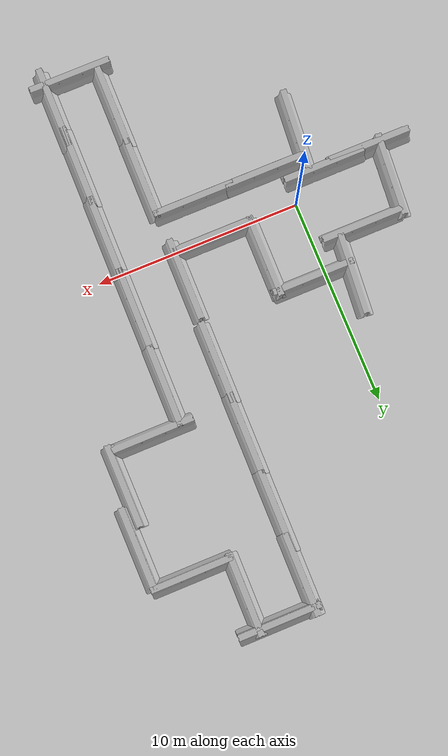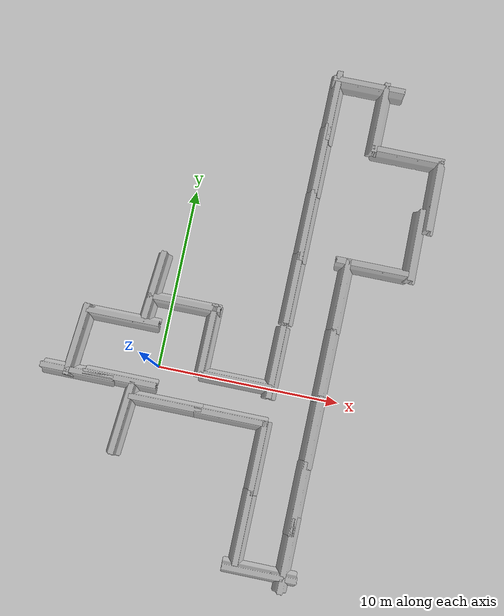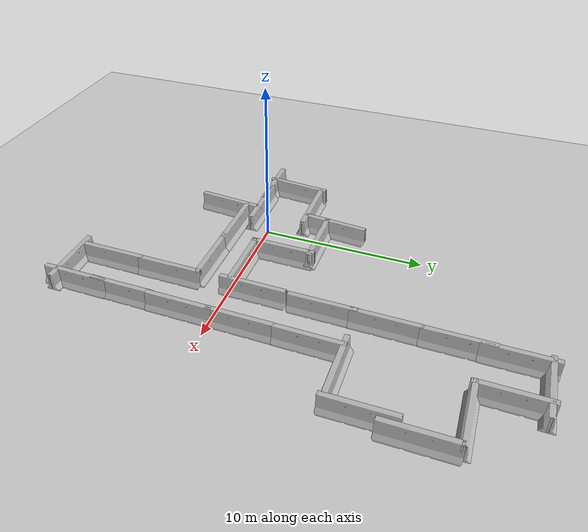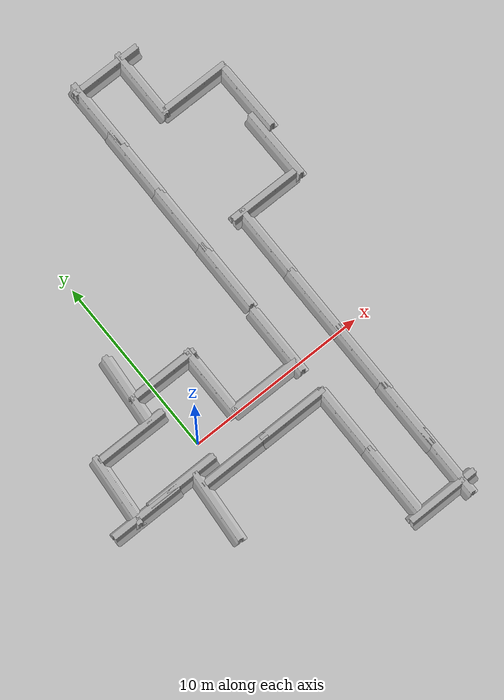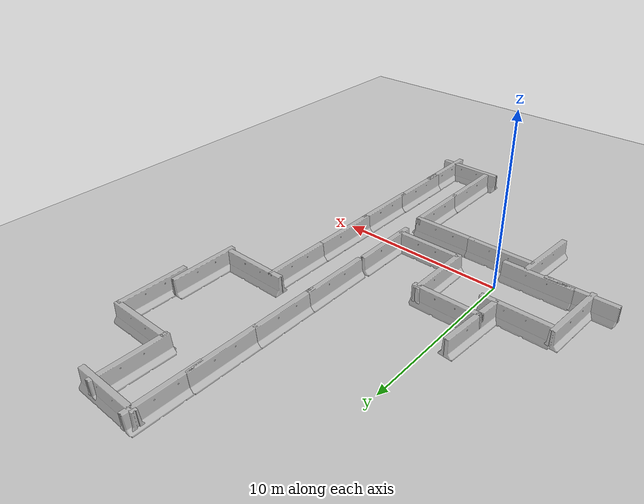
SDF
<sdf version="1.6">
 <world name="default">
  <light name="sun" type="directional">
   <pose>0 0 10 0 -0 0</pose>
   <diffuse>0.8 0.8 0.8 1</diffuse>
   <specular>0.1 0.1 0.1 1</specular>
   <attenuation>
    <range>1000</range>
    <constant>0.9</constant>
    <linear>0.01</linear>
    <quadratic>0.001</quadratic>
   </attenuation>
   <direction>-0.5 0.5 -1</direction>
  </light>
  <model name="ground_plane">
   <static>1</static>
   <link name="link">
    <collision name="collision">
     <geometry><plane><normal>0 0 1</normal><size>100 100</size></plane></geometry>
     <surface><friction><ode><mu>100</mu><mu2>50</mu2></ode></friction></surface>
    </collision>
    <visual name="visual">
     <cast_shadows>0</cast_shadows>
     <geometry><plane><normal>0 0 1</normal><size>100 100</size></plane></geometry>
     <material>
      <script><uri>file://media/materials/scripts/gazebo.material</uri><name>Gazebo/Grey</name></script>
     </material>
    </visual>
   </link>
  </model>
  <gravity>0 0 -9.8</gravity>
  <magnetic_field>6e-06 2.3e-05 -4.2e-05</magnetic_field>
  <atmosphere type="adiabatic"/>
  <physics name="default_physics" default="0" type="ode">
   <max_step_size>0.001</max_step_size>
   <real_time_factor>1</real_time_factor>
   <real_time_update_rate>1000</real_time_update_rate>
  </physics>
  <scene><ambient>0.4 0.4 0.4 1</ambient><background>0.7 0.7 0.7 1</background><shadows>1</shadows></scene>
  <spherical_coordinates>
   <surface_model>EARTH_WGS84</surface_model>
   <latitude_deg>0</latitude_deg>
   <longitude_deg>0</longitude_deg>
   <elevation>0</elevation>
   <heading_deg>0</heading_deg>
  </spherical_coordinates>
  <model name="jersey_barrier">
   <static>1</static>
   <link name="link">
    <visual name="visual">
     <geometry>
      <mesh><uri>model://jersey_barrier/meshes/jersey_barrier.dae</uri><scale>1 1 1</scale></mesh>
     </geometry>
    </visual>
    <collision name="upright">
     <pose>0 0 0.5715 0 -0 0</pose>
     <geometry><box><size>4.06542 0.3063 1.143</size></box></geometry>
    </collision>
    <collision name="base">
     <pose>0 0 0.032258 0 -0 0</pose>
     <geometry><box><size>4.06542 0.8107 0.064516</size></box></geometry>
    </collision>
    <collision name="base2">
     <pose>0 0 0.1 0 -0 0</pose>
     <geometry><box><size>4.06542 0.65 0.1</size></box></geometry>
    </collision>
    <collision name="base3">
     <pose>0 0 0.2 0 -0 0</pose>
     <geometry><box><size>4.06542 0.5 0.1</size></box></geometry>
    </collision>
    <collision name="left-angle">
     <pose>0 -0.224 0.2401 0.9 -0 0</pose>
     <geometry><box><size>4.06542 0.5 0.064516</size></box></geometry>
    </collision>
    <collision name="right-angle">
     <pose>0 0.224 0.2401 -0.9 0 0</pose>
     <geometry><box><size>4.06542 0.5 0.064516</size></box></geometry>
    </collision>
   </link>
   <pose>0.827355 -1.9113 0 0 -0 0</pose>
  </model>
  <model name="jersey_barrier_clone">
   <static>1</static>
   <link name="link">
    <visual name="visual">
     <geometry>
      <mesh><uri>model://jersey_barrier/meshes/jersey_barrier.dae</uri><scale>1 1 1</scale></mesh>
     </geometry>
    </visual>
    <collision name="upright">
     <pose>0 0 0.5715 0 -0 0</pose>
     <geometry><box><size>4.06542 0.3063 1.143</size></box></geometry>
    </collision>
    <collision name="base">
     <pose>0 0 0.032258 0 -0 0</pose>
     <geometry><box><size>4.06542 0.8107 0.064516</size></box></geometry>
    </collision>
    <collision name="base2">
     <pose>0 0 0.1 0 -0 0</pose>
     <geometry><box><size>4.06542 0.65 0.1</size></box></geometry>
    </collision>
    <collision name="base3">
     <pose>0 0 0.2 0 -0 0</pose>
     <geometry><box><size>4.06542 0.5 0.1</size></box></geometry>
    </collision>
    <collision name="left-angle">
     <pose>0 -0.224 0.2401 0.9 -0 0</pose>
     <geometry><box><size>4.06542 0.5 0.064516</size></box></geometry>
    </collision>
    <collision name="right-angle">
     <pose>0 0.224 0.2401 -0.9 0 0</pose>
     <geometry><box><size>4.06542 0.5 0.064516</size></box></geometry>
    </collision>
   </link>
   <pose>4.43194 -1.91594 0 0 -0 0</pose>
  </model>
  <model name="jersey_barrier_clone_0">
   <static>1</static>
   <link name="link">
    <visual name="visual">
     <geometry>
      <mesh><uri>model://jersey_barrier/meshes/jersey_barrier.dae</uri><scale>1 1 1</scale></mesh>
     </geometry>
    </visual>
    <collision name="upright">
     <pose>0 0 0.5715 0 -0 0</pose>
     <geometry><box><size>4.06542 0.3063 1.143</size></box></geometry>
    </collision>
    <collision name="base">
     <pose>0 0 0.032258 0 -0 0</pose>
     <geometry><box><size>4.06542 0.8107 0.064516</size></box></geometry>
    </collision>
    <collision name="base2">
     <pose>0 0 0.1 0 -0 0</pose>
     <geometry><box><size>4.06542 0.65 0.1</size></box></geometry>
    </collision>
    <collision name="base3">
     <pose>0 0 0.2 0 -0 0</pose>
     <geometry><box><size>4.06542 0.5 0.1</size></box></geometry>
    </collision>
    <collision name="left-angle">
     <pose>0 -0.224 0.2401 0.9 -0 0</pose>
     <geometry><box><size>4.06542 0.5 0.064516</size></box></geometry>
    </collision>
    <collision name="right-angle">
     <pose>0 0.224 0.2401 -0.9 0 0</pose>
     <geometry><box><size>4.06542 0.5 0.064516</size></box></geometry>
    </collision>
   </link>
   <pose>4.28294 0.067913 0 0 -0 0</pose>
  </model>
  <model name="jersey_barrier_clone_0_clone">
   <static>1</static>
   <link name="link">
    <visual name="visual">
     <geometry>
      <mesh><uri>model://jersey_barrier/meshes/jersey_barrier.dae</uri><scale>1 1 1</scale></mesh>
     </geometry>
    </visual>
    <collision name="upright">
     <pose>0 0 0.5715 0 -0 0</pose>
     <geometry><box><size>4.06542 0.3063 1.143</size></box></geometry>
    </collision>
    <collision name="base">
     <pose>0 0 0.032258 0 -0 0</pose>
     <geometry><box><size>4.06542 0.8107 0.064516</size></box></geometry>
    </collision>
    <collision name="base2">
     <pose>0 0 0.1 0 -0 0</pose>
     <geometry><box><size>4.06542 0.65 0.1</size></box></geometry>
    </collision>
    <collision name="base3">
     <pose>0 0 0.2 0 -0 0</pose>
     <geometry><box><size>4.06542 0.5 0.1</size></box></geometry>
    </collision>
    <collision name="left-angle">
     <pose>0 -0.224 0.2401 0.9 -0 0</pose>
     <geometry><box><size>4.06542 0.5 0.064516</size></box></geometry>
    </collision>
    <collision name="right-angle">
     <pose>0 0.224 0.2401 -0.9 0 0</pose>
     <geometry><box><size>4.06542 0.5 0.064516</size></box></geometry>
    </collision>
   </link>
   <pose>6.23702 1.47395 0 0 -0 1.56156</pose>
  </model>
  <model name="jersey_barrier_clone_0_clone_clone">
   <static>1</static>
   <link name="link">
    <visual name="visual">
     <geometry>
      <mesh><uri>model://jersey_barrier/meshes/jersey_barrier.dae</uri><scale>1 1 1</scale></mesh>
     </geometry>
    </visual>
    <collision name="upright">
     <pose>0 0 0.5715 0 -0 0</pose>
     <geometry><box><size>4.06542 0.3063 1.143</size></box></geometry>
    </collision>
    <collision name="base">
     <pose>0 0 0.032258 0 -0 0</pose>
     <geometry><box><size>4.06542 0.8107 0.064516</size></box></geometry>
    </collision>
    <collision name="base2">
     <pose>0 0 0.1 0 -0 0</pose>
     <geometry><box><size>4.06542 0.65 0.1</size></box></geometry>
    </collision>
    <collision name="base3">
     <pose>0 0 0.2 0 -0 0</pose>
     <geometry><box><size>4.06542 0.5 0.1</size></box></geometry>
    </collision>
    <collision name="left-angle">
     <pose>0 -0.224 0.2401 0.9 -0 0</pose>
     <geometry><box><size>4.06542 0.5 0.064516</size></box></geometry>
    </collision>
    <collision name="right-angle">
     <pose>0 0.224 0.2401 -0.9 0 0</pose>
     <geometry><box><size>4.06542 0.5 0.064516</size></box></geometry>
    </collision>
   </link>
   <pose>6.29799 -3.77355 0 0 -0 1.56156</pose>
  </model>
  <model name="jersey_barrier_clone_0_clone_clone_0">
   <static>1</static>
   <link name="link">
    <visual name="visual">
     <geometry>
      <mesh><uri>model://jersey_barrier/meshes/jersey_barrier.dae</uri><scale>1 1 1</scale></mesh>
     </geometry>
    </visual>
    <collision name="upright">
     <pose>0 0 0.5715 0 -0 0</pose>
     <geometry><box><size>4.06542 0.3063 1.143</size></box></geometry>
    </collision>
    <collision name="base">
     <pose>0 0 0.032258 0 -0 0</pose>
     <geometry><box><size>4.06542 0.8107 0.064516</size></box></geometry>
    </collision>
    <collision name="base2">
     <pose>0 0 0.1 0 -0 0</pose>
     <geometry><box><size>4.06542 0.65 0.1</size></box></geometry>
    </collision>
    <collision name="base3">
     <pose>0 0 0.2 0 -0 0</pose>
     <geometry><box><size>4.06542 0.5 0.1</size></box></geometry>
    </collision>
    <collision name="left-angle">
     <pose>0 -0.224 0.2401 0.9 -0 0</pose>
     <geometry><box><size>4.06542 0.5 0.064516</size></box></geometry>
    </collision>
    <collision name="right-angle">
     <pose>0 0.224 0.2401 -0.9 0 0</pose>
     <geometry><box><size>4.06542 0.5 0.064516</size></box></geometry>
    </collision>
   </link>
   <pose>8.9444 1.848 0 0 -0 1.56156</pose>
  </model>
  <model name="jersey_barrier_clone_0_clone_clone_1">
   <static>1</static>
   <link name="link">
    <visual name="visual">
     <geometry>
      <mesh><uri>model://jersey_barrier/meshes/jersey_barrier.dae</uri><scale>1 1 1</scale></mesh>
     </geometry>
    </visual>
    <collision name="upright">
     <pose>0 0 0.5715 0 -0 0</pose>
     <geometry><box><size>4.06542 0.3063 1.143</size></box></geometry>
    </collision>
    <collision name="base">
     <pose>0 0 0.032258 0 -0 0</pose>
     <geometry><box><size>4.06542 0.8107 0.064516</size></box></geometry>
    </collision>
    <collision name="base2">
     <pose>0 0 0.1 0 -0 0</pose>
     <geometry><box><size>4.06542 0.65 0.1</size></box></geometry>
    </collision>
    <collision name="base3">
     <pose>0 0 0.2 0 -0 0</pose>
     <geometry><box><size>4.06542 0.5 0.1</size></box></geometry>
    </collision>
    <collision name="left-angle">
     <pose>0 -0.224 0.2401 0.9 -0 0</pose>
     <geometry><box><size>4.06542 0.5 0.064516</size></box></geometry>
    </collision>
    <collision name="right-angle">
     <pose>0 0.224 0.2401 -0.9 0 0</pose>
     <geometry><box><size>4.06542 0.5 0.064516</size></box></geometry>
    </collision>
   </link>
   <pose>8.92211 -1.8276 0 0 -0 1.56156</pose>
  </model>
  <model name="jersey_barrier_clone_0_clone_clone_2">
   <static>1</static>
   <link name="link">
    <visual name="visual">
     <geometry>
      <mesh><uri>model://jersey_barrier/meshes/jersey_barrier.dae</uri><scale>1 1 1</scale></mesh>
     </geometry>
    </visual>
    <collision name="upright">
     <pose>0 0 0.5715 0 -0 0</pose>
     <geometry><box><size>4.06542 0.3063 1.143</size></box></geometry>
    </collision>
    <collision name="base">
     <pose>0 0 0.032258 0 -0 0</pose>
     <geometry><box><size>4.06542 0.8107 0.064516</size></box></geometry>
    </collision>
    <collision name="base2">
     <pose>0 0 0.1 0 -0 0</pose>
     <geometry><box><size>4.06542 0.65 0.1</size></box></geometry>
    </collision>
    <collision name="base3">
     <pose>0 0 0.2 0 -0 0</pose>
     <geometry><box><size>4.06542 0.5 0.1</size></box></geometry>
    </collision>
    <collision name="left-angle">
     <pose>0 -0.224 0.2401 0.9 -0 0</pose>
     <geometry><box><size>4.06542 0.5 0.064516</size></box></geometry>
    </collision>
    <collision name="right-angle">
     <pose>0 0.224 0.2401 -0.9 0 0</pose>
     <geometry><box><size>4.06542 0.5 0.064516</size></box></geometry>
    </collision>
   </link>
   <pose>8.85462 -5.43466 0 0 -0 1.56156</pose>
  </model>
  <model name="jersey_barrier_clone_0_clone_clone_3">
   <static>1</static>
   <link name="link">
    <visual name="visual">
     <geometry>
      <mesh><uri>model://jersey_barrier/meshes/jersey_barrier.dae</uri><scale>1 1 1</scale></mesh>
     </geometry>
    </visual>
    <collision name="upright">
     <pose>0 0 0.5715 0 -0 0</pose>
     <geometry><box><size>4.06542 0.3063 1.143</size></box></geometry>
    </collision>
    <collision name="base">
     <pose>0 0 0.032258 0 -0 0</pose>
     <geometry><box><size>4.06542 0.8107 0.064516</size></box></geometry>
    </collision>
    <collision name="base2">
     <pose>0 0 0.1 0 -0 0</pose>
     <geometry><box><size>4.06542 0.65 0.1</size></box></geometry>
    </collision>
    <collision name="base3">
     <pose>0 0 0.2 0 -0 0</pose>
     <geometry><box><size>4.06542 0.5 0.1</size></box></geometry>
    </collision>
    <collision name="left-angle">
     <pose>0 -0.224 0.2401 0.9 -0 0</pose>
     <geometry><box><size>4.06542 0.5 0.064516</size></box></geometry>
    </collision>
    <collision name="right-angle">
     <pose>0 0.224 0.2401 -0.9 0 0</pose>
     <geometry><box><size>4.06542 0.5 0.064516</size></box></geometry>
    </collision>
   </link>
   <pose>8.84626 -8.47196 0 0 -0 1.56156</pose>
  </model>
  <model name="jersey_barrier_clone_0_clone_clone_4">
   <static>1</static>
   <link name="link">
    <visual name="visual">
     <geometry>
      <mesh><uri>model://jersey_barrier/meshes/jersey_barrier.dae</uri><scale>1 1 1</scale></mesh>
     </geometry>
    </visual>
    <collision name="upright">
     <pose>0 0 0.5715 0 -0 0</pose>
     <geometry><box><size>4.06542 0.3063 1.143</size></box></geometry>
    </collision>
    <collision name="base">
     <pose>0 0 0.032258 0 -0 0</pose>
     <geometry><box><size>4.06542 0.8107 0.064516</size></box></geometry>
    </collision>
    <collision name="base2">
     <pose>0 0 0.1 0 -0 0</pose>
     <geometry><box><size>4.06542 0.65 0.1</size></box></geometry>
    </collision>
    <collision name="base3">
     <pose>0 0 0.2 0 -0 0</pose>
     <geometry><box><size>4.06542 0.5 0.1</size></box></geometry>
    </collision>
    <collision name="left-angle">
     <pose>0 -0.224 0.2401 0.9 -0 0</pose>
     <geometry><box><size>4.06542 0.5 0.064516</size></box></geometry>
    </collision>
    <collision name="right-angle">
     <pose>0 0.224 0.2401 -0.9 0 0</pose>
     <geometry><box><size>4.06542 0.5 0.064516</size></box></geometry>
    </collision>
   </link>
   <pose>6.24912 -7.51198 0 0 -0 1.56156</pose>
  </model>
  <model name="jersey_barrier_clone_0_clone_clone_5">
   <static>1</static>
   <link name="link">
    <visual name="visual">
     <geometry>
      <mesh><uri>model://jersey_barrier/meshes/jersey_barrier.dae</uri><scale>1 1 1</scale></mesh>
     </geometry>
    </visual>
    <collision name="upright">
     <pose>0 0 0.5715 0 -0 0</pose>
     <geometry><box><size>4.06542 0.3063 1.143</size></box></geometry>
    </collision>
    <collision name="base">
     <pose>0 0 0.032258 0 -0 0</pose>
     <geometry><box><size>4.06542 0.8107 0.064516</size></box></geometry>
    </collision>
    <collision name="base2">
     <pose>0 0 0.1 0 -0 0</pose>
     <geometry><box><size>4.06542 0.65 0.1</size></box></geometry>
    </collision>
    <collision name="base3">
     <pose>0 0 0.2 0 -0 0</pose>
     <geometry><box><size>4.06542 0.5 0.1</size></box></geometry>
    </collision>
    <collision name="left-angle">
     <pose>0 -0.224 0.2401 0.9 -0 0</pose>
     <geometry><box><size>4.06542 0.5 0.064516</size></box></geometry>
    </collision>
    <collision name="right-angle">
     <pose>0 0.224 0.2401 -0.9 0 0</pose>
     <geometry><box><size>4.06542 0.5 0.064516</size></box></geometry>
    </collision>
   </link>
   <pose>8.99865 5.73929 0 0 -0 1.56156</pose>
  </model>
  <model name="jersey_barrier_clone_0_clone_clone_6">
   <static>1</static>
   <link name="link">
    <visual name="visual">
     <geometry>
      <mesh><uri>model://jersey_barrier/meshes/jersey_barrier.dae</uri><scale>1 1 1</scale></mesh>
     </geometry>
    </visual>
    <collision name="upright">
     <pose>0 0 0.5715 0 -0 0</pose>
     <geometry><box><size>4.06542 0.3063 1.143</size></box></geometry>
    </collision>
    <collision name="base">
     <pose>0 0 0.032258 0 -0 0</pose>
     <geometry><box><size>4.06542 0.8107 0.064516</size></box></geometry>
    </collision>
    <collision name="base2">
     <pose>0 0 0.1 0 -0 0</pose>
     <geometry><box><size>4.06542 0.65 0.1</size></box></geometry>
    </collision>
    <collision name="base3">
     <pose>0 0 0.2 0 -0 0</pose>
     <geometry><box><size>4.06542 0.5 0.1</size></box></geometry>
    </collision>
    <collision name="left-angle">
     <pose>0 -0.224 0.2401 0.9 -0 0</pose>
     <geometry><box><size>4.06542 0.5 0.064516</size></box></geometry>
    </collision>
    <collision name="right-angle">
     <pose>0 0.224 0.2401 -0.9 0 0</pose>
     <geometry><box><size>4.06542 0.5 0.064516</size></box></geometry>
    </collision>
   </link>
   <pose>6.35401 5.64853 0 0 -0 1.56156</pose>
  </model>
  <model name="jersey_barrier_clone_0_clone_clone_7">
   <static>1</static>
   <link name="link">
    <visual name="visual">
     <geometry>
      <mesh><uri>model://jersey_barrier/meshes/jersey_barrier.dae</uri><scale>1 1 1</scale></mesh>
     </geometry>
    </visual>
    <collision name="upright">
     <pose>0 0 0.5715 0 -0 0</pose>
     <geometry><box><size>4.06542 0.3063 1.143</size></box></geometry>
    </collision>
    <collision name="base">
     <pose>0 0 0.032258 0 -0 0</pose>
     <geometry><box><size>4.06542 0.8107 0.064516</size></box></geometry>
    </collision>
    <collision name="base2">
     <pose>0 0 0.1 0 -0 0</pose>
     <geometry><box><size>4.06542 0.65 0.1</size></box></geometry>
    </collision>
    <collision name="base3">
     <pose>0 0 0.2 0 -0 0</pose>
     <geometry><box><size>4.06542 0.5 0.1</size></box></geometry>
    </collision>
    <collision name="left-angle">
     <pose>0 -0.224 0.2401 0.9 -0 0</pose>
     <geometry><box><size>4.06542 0.5 0.064516</size></box></geometry>
    </collision>
    <collision name="right-angle">
     <pose>0 0.224 0.2401 -0.9 0 0</pose>
     <geometry><box><size>4.06542 0.5 0.064516</size></box></geometry>
    </collision>
   </link>
   <pose>6.40336 9.19233 0 0 -0 1.56156</pose>
  </model>
  <model name="jersey_barrier_clone_0_clone_clone_8">
   <static>1</static>
   <link name="link">
    <visual name="visual">
     <geometry>
      <mesh><uri>model://jersey_barrier/meshes/jersey_barrier.dae</uri><scale>1 1 1</scale></mesh>
     </geometry>
    </visual>
    <collision name="upright">
     <pose>0 0 0.5715 0 -0 0</pose>
     <geometry><box><size>4.06542 0.3063 1.143</size></box></geometry>
    </collision>
    <collision name="base">
     <pose>0 0 0.032258 0 -0 0</pose>
     <geometry><box><size>4.06542 0.8107 0.064516</size></box></geometry>
    </collision>
    <collision name="base2">
     <pose>0 0 0.1 0 -0 0</pose>
     <geometry><box><size>4.06542 0.65 0.1</size></box></geometry>
    </collision>
    <collision name="base3">
     <pose>0 0 0.2 0 -0 0</pose>
     <geometry><box><size>4.06542 0.5 0.1</size></box></geometry>
    </collision>
    <collision name="left-angle">
     <pose>0 -0.224 0.2401 0.9 -0 0</pose>
     <geometry><box><size>4.06542 0.5 0.064516</size></box></geometry>
    </collision>
    <collision name="right-angle">
     <pose>0 0.224 0.2401 -0.9 0 0</pose>
     <geometry><box><size>4.06542 0.5 0.064516</size></box></geometry>
    </collision>
   </link>
   <pose>6.45625 13.0191 0 0 -0 1.56156</pose>
  </model>
  <model name="jersey_barrier_clone_0_clone_clone_9">
   <static>1</static>
   <link name="link">
    <visual name="visual">
     <geometry>
      <mesh><uri>model://jersey_barrier/meshes/jersey_barrier.dae</uri><scale>1 1 1</scale></mesh>
     </geometry>
    </visual>
    <collision name="upright">
     <pose>0 0 0.5715 0 -0 0</pose>
     <geometry><box><size>4.06542 0.3063 1.143</size></box></geometry>
    </collision>
    <collision name="base">
     <pose>0 0 0.032258 0 -0 0</pose>
     <geometry><box><size>4.06542 0.8107 0.064516</size></box></geometry>
    </collision>
    <collision name="base2">
     <pose>0 0 0.1 0 -0 0</pose>
     <geometry><box><size>4.06542 0.65 0.1</size></box></geometry>
    </collision>
    <collision name="base3">
     <pose>0 0 0.2 0 -0 0</pose>
     <geometry><box><size>4.06542 0.5 0.1</size></box></geometry>
    </collision>
    <collision name="left-angle">
     <pose>0 -0.224 0.2401 0.9 -0 0</pose>
     <geometry><box><size>4.06542 0.5 0.064516</size></box></geometry>
    </collision>
    <collision name="right-angle">
     <pose>0 0.224 0.2401 -0.9 0 0</pose>
     <geometry><box><size>4.06542 0.5 0.064516</size></box></geometry>
    </collision>
   </link>
   <pose>6.52114 16.0923 0 0 -0 1.56156</pose>
  </model>
  <model name="jersey_barrier_clone_0_clone_clone_10">
   <static>1</static>
   <link name="link">
    <visual name="visual">
     <geometry>
      <mesh><uri>model://jersey_barrier/meshes/jersey_barrier.dae</uri><scale>1 1 1</scale></mesh>
     </geometry>
    </visual>
    <collision name="upright">
     <pose>0 0 0.5715 0 -0 0</pose>
     <geometry><box><size>4.06542 0.3063 1.143</size></box></geometry>
    </collision>
    <collision name="base">
     <pose>0 0 0.032258 0 -0 0</pose>
     <geometry><box><size>4.06542 0.8107 0.064516</size></box></geometry>
    </collision>
    <collision name="base2">
     <pose>0 0 0.1 0 -0 0</pose>
     <geometry><box><size>4.06542 0.65 0.1</size></box></geometry>
    </collision>
    <collision name="base3">
     <pose>0 0 0.2 0 -0 0</pose>
     <geometry><box><size>4.06542 0.5 0.1</size></box></geometry>
    </collision>
    <collision name="left-angle">
     <pose>0 -0.224 0.2401 0.9 -0 0</pose>
     <geometry><box><size>4.06542 0.5 0.064516</size></box></geometry>
    </collision>
    <collision name="right-angle">
     <pose>0 0.224 0.2401 -0.9 0 0</pose>
     <geometry><box><size>4.06542 0.5 0.064516</size></box></geometry>
    </collision>
   </link>
   <pose>9.23004 15.9573 0 0 -0 1.56156</pose>
  </model>
  <model name="jersey_barrier_clone_0_clone_clone_11">
   <static>1</static>
   <link name="link">
    <visual name="visual">
     <geometry>
      <mesh><uri>model://jersey_barrier/meshes/jersey_barrier.dae</uri><scale>1 1 1</scale></mesh>
     </geometry>
    </visual>
    <collision name="upright">
     <pose>0 0 0.5715 0 -0 0</pose>
     <geometry><box><size>4.06542 0.3063 1.143</size></box></geometry>
    </collision>
    <collision name="base">
     <pose>0 0 0.032258 0 -0 0</pose>
     <geometry><box><size>4.06542 0.8107 0.064516</size></box></geometry>
    </collision>
    <collision name="base2">
     <pose>0 0 0.1 0 -0 0</pose>
     <geometry><box><size>4.06542 0.65 0.1</size></box></geometry>
    </collision>
    <collision name="base3">
     <pose>0 0 0.2 0 -0 0</pose>
     <geometry><box><size>4.06542 0.5 0.1</size></box></geometry>
    </collision>
    <collision name="left-angle">
     <pose>0 -0.224 0.2401 0.9 -0 0</pose>
     <geometry><box><size>4.06542 0.5 0.064516</size></box></geometry>
    </collision>
    <collision name="right-angle">
     <pose>0 0.224 0.2401 -0.9 0 0</pose>
     <geometry><box><size>4.06542 0.5 0.064516</size></box></geometry>
    </collision>
   </link>
   <pose>2.37502 1.88795 0 0 -0 1.56156</pose>
  </model>
  <model name="jersey_barrier_0">
   <static>1</static>
   <link name="link">
    <visual name="visual">
     <geometry>
      <mesh><uri>model://jersey_barrier/meshes/jersey_barrier.dae</uri><scale>1 1 1</scale></mesh>
     </geometry>
    </visual>
    <collision name="upright">
     <pose>0 0 0.5715 0 -0 0</pose>
     <geometry><box><size>4.06542 0.3063 1.143</size></box></geometry>
    </collision>
    <collision name="base">
     <pose>0 0 0.032258 0 -0 0</pose>
     <geometry><box><size>4.06542 0.8107 0.064516</size></box></geometry>
    </collision>
    <collision name="base2">
     <pose>0 0 0.1 0 -0 0</pose>
     <geometry><box><size>4.06542 0.65 0.1</size></box></geometry>
    </collision>
    <collision name="base3">
     <pose>0 0 0.2 0 -0 0</pose>
     <geometry><box><size>4.06542 0.5 0.1</size></box></geometry>
    </collision>
    <collision name="left-angle">
     <pose>0 -0.224 0.2401 0.9 -0 0</pose>
     <geometry><box><size>4.06542 0.5 0.064516</size></box></geometry>
    </collision>
    <collision name="right-angle">
     <pose>0 0.224 0.2401 -0.9 0 0</pose>
     <geometry><box><size>4.06542 0.5 0.064516</size></box></geometry>
    </collision>
   </link>
   <pose>-2.40733 2.21911 0 0 -0 0</pose>
  </model>
  <model name="jersey_barrier_0_clone">
   <static>1</static>
   <link name="link">
    <visual name="visual">
     <geometry>
      <mesh><uri>model://jersey_barrier/meshes/jersey_barrier.dae</uri><scale>1 1 1</scale></mesh>
     </geometry>
    </visual>
    <collision name="upright">
     <pose>0 0 0.5715 0 -0 0</pose>
     <geometry><box><size>4.06542 0.3063 1.143</size></box></geometry>
    </collision>
    <collision name="base">
     <pose>0 0 0.032258 0 -0 0</pose>
     <geometry><box><size>4.06542 0.8107 0.064516</size></box></geometry>
    </collision>
    <collision name="base2">
     <pose>0 0 0.1 0 -0 0</pose>
     <geometry><box><size>4.06542 0.65 0.1</size></box></geometry>
    </collision>
    <collision name="base3">
     <pose>0 0 0.2 0 -0 0</pose>
     <geometry><box><size>4.06542 0.5 0.1</size></box></geometry>
    </collision>
    <collision name="left-angle">
     <pose>0 -0.224 0.2401 0.9 -0 0</pose>
     <geometry><box><size>4.06542 0.5 0.064516</size></box></geometry>
    </collision>
    <collision name="right-angle">
     <pose>0 0.224 0.2401 -0.9 0 0</pose>
     <geometry><box><size>4.06542 0.5 0.064516</size></box></geometry>
    </collision>
   </link>
   <pose>0.696541 3.63619 0 0 -0 0</pose>
  </model>
  <model name="jersey_barrier_0_clone_0">
   <static>1</static>
   <link name="link">
    <visual name="visual">
     <geometry>
      <mesh><uri>model://jersey_barrier/meshes/jersey_barrier.dae</uri><scale>1 1 1</scale></mesh>
     </geometry>
    </visual>
    <collision name="upright">
     <pose>0 0 0.5715 0 -0 0</pose>
     <geometry><box><size>4.06542 0.3063 1.143</size></box></geometry>
    </collision>
    <collision name="base">
     <pose>0 0 0.032258 0 -0 0</pose>
     <geometry><box><size>4.06542 0.8107 0.064516</size></box></geometry>
    </collision>
    <collision name="base2">
     <pose>0 0 0.1 0 -0 0</pose>
     <geometry><box><size>4.06542 0.65 0.1</size></box></geometry>
    </collision>
    <collision name="base3">
     <pose>0 0 0.2 0 -0 0</pose>
     <geometry><box><size>4.06542 0.5 0.1</size></box></geometry>
    </collision>
    <collision name="left-angle">
     <pose>0 -0.224 0.2401 0.9 -0 0</pose>
     <geometry><box><size>4.06542 0.5 0.064516</size></box></geometry>
    </collision>
    <collision name="right-angle">
     <pose>0 0.224 0.2401 -0.9 0 0</pose>
     <geometry><box><size>4.06542 0.5 0.064516</size></box></geometry>
    </collision>
   </link>
   <pose>7.57578 -9.67722 0 0 -0 0</pose>
  </model>
  <model name="jersey_barrier_0_clone_1">
   <static>1</static>
   <link name="link">
    <visual name="visual">
     <geometry>
      <mesh><uri>model://jersey_barrier/meshes/jersey_barrier.dae</uri><scale>1 1 1</scale></mesh>
     </geometry>
    </visual>
    <collision name="upright">
     <pose>0 0 0.5715 0 -0 0</pose>
     <geometry><box><size>4.06542 0.3063 1.143</size></box></geometry>
    </collision>
    <collision name="base">
     <pose>0 0 0.032258 0 -0 0</pose>
     <geometry><box><size>4.06542 0.8107 0.064516</size></box></geometry>
    </collision>
    <collision name="base2">
     <pose>0 0 0.1 0 -0 0</pose>
     <geometry><box><size>4.06542 0.65 0.1</size></box></geometry>
    </collision>
    <collision name="base3">
     <pose>0 0 0.2 0 -0 0</pose>
     <geometry><box><size>4.06542 0.5 0.1</size></box></geometry>
    </collision>
    <collision name="left-angle">
     <pose>0 -0.224 0.2401 0.9 -0 0</pose>
     <geometry><box><size>4.06542 0.5 0.064516</size></box></geometry>
    </collision>
    <collision name="right-angle">
     <pose>0 0.224 0.2401 -0.9 0 0</pose>
     <geometry><box><size>4.06542 0.5 0.064516</size></box></geometry>
    </collision>
   </link>
   <pose>10.375 7.61372 0 0 -0 0</pose>
  </model>
  <model name="jersey_barrier_0_clone_2">
   <static>1</static>
   <link name="link">
    <visual name="visual">
     <geometry>
      <mesh><uri>model://jersey_barrier/meshes/jersey_barrier.dae</uri><scale>1 1 1</scale></mesh>
     </geometry>
    </visual>
    <collision name="upright">
     <pose>0 0 0.5715 0 -0 0</pose>
     <geometry><box><size>4.06542 0.3063 1.143</size></box></geometry>
    </collision>
    <collision name="base">
     <pose>0 0 0.032258 0 -0 0</pose>
     <geometry><box><size>4.06542 0.8107 0.064516</size></box></geometry>
    </collision>
    <collision name="base2">
     <pose>0 0 0.1 0 -0 0</pose>
     <geometry><box><size>4.06542 0.65 0.1</size></box></geometry>
    </collision>
    <collision name="base3">
     <pose>0 0 0.2 0 -0 0</pose>
     <geometry><box><size>4.06542 0.5 0.1</size></box></geometry>
    </collision>
    <collision name="left-angle">
     <pose>0 -0.224 0.2401 0.9 -0 0</pose>
     <geometry><box><size>4.06542 0.5 0.064516</size></box></geometry>
    </collision>
    <collision name="right-angle">
     <pose>0 0.224 0.2401 -0.9 0 0</pose>
     <geometry><box><size>4.06542 0.5 0.064516</size></box></geometry>
    </collision>
   </link>
   <pose>11.1105 14.1715 0 0 -0 0</pose>
  </model>
  <model name="jersey_barrier_0_clone_3">
   <static>1</static>
   <link name="link">
    <visual name="visual">
     <geometry>
      <mesh><uri>model://jersey_barrier/meshes/jersey_barrier.dae</uri><scale>1 1 1</scale></mesh>
     </geometry>
    </visual>
    <collision name="upright">
     <pose>0 0 0.5715 0 -0 0</pose>
     <geometry><box><size>4.06542 0.3063 1.143</size></box></geometry>
    </collision>
    <collision name="base">
     <pose>0 0 0.032258 0 -0 0</pose>
     <geometry><box><size>4.06542 0.8107 0.064516</size></box></geometry>
    </collision>
    <collision name="base2">
     <pose>0 0 0.1 0 -0 0</pose>
     <geometry><box><size>4.06542 0.65 0.1</size></box></geometry>
    </collision>
    <collision name="base3">
     <pose>0 0 0.2 0 -0 0</pose>
     <geometry><box><size>4.06542 0.5 0.1</size></box></geometry>
    </collision>
    <collision name="left-angle">
     <pose>0 -0.224 0.2401 0.9 -0 0</pose>
     <geometry><box><size>4.06542 0.5 0.064516</size></box></geometry>
    </collision>
    <collision name="right-angle">
     <pose>0 0.224 0.2401 -0.9 0 0</pose>
     <geometry><box><size>4.06542 0.5 0.064516</size></box></geometry>
    </collision>
   </link>
   <pose>12.9693 12.1932 0 0 0 -1.56734</pose>
  </model>
  <model name="jersey_barrier_0_clone_3_clone">
   <static>1</static>
   <link name="link">
    <visual name="visual">
     <geometry>
      <mesh><uri>model://jersey_barrier/meshes/jersey_barrier.dae</uri><scale>1 1 1</scale></mesh>
     </geometry>
    </visual>
    <collision name="upright">
     <pose>0 0 0.5715 0 -0 0</pose>
     <geometry><box><size>4.06542 0.3063 1.143</size></box></geometry>
    </collision>
    <collision name="base">
     <pose>0 0 0.032258 0 -0 0</pose>
     <geometry><box><size>4.06542 0.8107 0.064516</size></box></geometry>
    </collision>
    <collision name="base2">
     <pose>0 0 0.1 0 -0 0</pose>
     <geometry><box><size>4.06542 0.65 0.1</size></box></geometry>
    </collision>
    <collision name="base3">
     <pose>0 0 0.2 0 -0 0</pose>
     <geometry><box><size>4.06542 0.5 0.1</size></box></geometry>
    </collision>
    <collision name="left-angle">
     <pose>0 -0.224 0.2401 0.9 -0 0</pose>
     <geometry><box><size>4.06542 0.5 0.064516</size></box></geometry>
    </collision>
    <collision name="right-angle">
     <pose>0 0.224 0.2401 -0.9 0 0</pose>
     <geometry><box><size>4.06542 0.5 0.064516</size></box></geometry>
    </collision>
   </link>
   <pose>12.4896 9.30357 0 0 0 -1.56734</pose>
  </model>
  <model name="jersey_barrier_1">
   <static>1</static>
   <link name="link">
    <visual name="visual">
     <geometry>
      <mesh><uri>model://jersey_barrier/meshes/jersey_barrier.dae</uri><scale>1 1 1</scale></mesh>
     </geometry>
    </visual>
    <collision name="upright">
     <pose>0 0 0.5715 0 -0 0</pose>
     <geometry><box><size>4.06542 0.3063 1.143</size></box></geometry>
    </collision>
    <collision name="base">
     <pose>0 0 0.032258 0 -0 0</pose>
     <geometry><box><size>4.06542 0.8107 0.064516</size></box></geometry>
    </collision>
    <collision name="base2">
     <pose>0 0 0.1 0 -0 0</pose>
     <geometry><box><size>4.06542 0.65 0.1</size></box></geometry>
    </collision>
    <collision name="base3">
     <pose>0 0 0.2 0 -0 0</pose>
     <geometry><box><size>4.06542 0.5 0.1</size></box></geometry>
    </collision>
    <collision name="left-angle">
     <pose>0 -0.224 0.2401 0.9 -0 0</pose>
     <geometry><box><size>4.06542 0.5 0.064516</size></box></geometry>
    </collision>
    <collision name="right-angle">
     <pose>0 0.224 0.2401 -0.9 0 0</pose>
     <geometry><box><size>4.06542 0.5 0.064516</size></box></geometry>
    </collision>
   </link>
   <pose>8.25099 17.6575 0 0 -0 0</pose>
  </model>
  <model name="jersey_barrier_0_clone_4">
   <static>1</static>
   <link name="link">
    <visual name="visual">
     <geometry>
      <mesh><uri>model://jersey_barrier/meshes/jersey_barrier.dae</uri><scale>1 1 1</scale></mesh>
     </geometry>
    </visual>
    <collision name="upright">
     <pose>0 0 0.5715 0 -0 0</pose>
     <geometry><box><size>4.06542 0.3063 1.143</size></box></geometry>
    </collision>
    <collision name="base">
     <pose>0 0 0.032258 0 -0 0</pose>
     <geometry><box><size>4.06542 0.8107 0.064516</size></box></geometry>
    </collision>
    <collision name="base2">
     <pose>0 0 0.1 0 -0 0</pose>
     <geometry><box><size>4.06542 0.65 0.1</size></box></geometry>
    </collision>
    <collision name="base3">
     <pose>0 0 0.2 0 -0 0</pose>
     <geometry><box><size>4.06542 0.5 0.1</size></box></geometry>
    </collision>
    <collision name="left-angle">
     <pose>0 -0.224 0.2401 0.9 -0 0</pose>
     <geometry><box><size>4.06542 0.5 0.064516</size></box></geometry>
    </collision>
    <collision name="right-angle">
     <pose>0 0.224 0.2401 -0.9 0 0</pose>
     <geometry><box><size>4.06542 0.5 0.064516</size></box></geometry>
    </collision>
   </link>
   <pose>-1.85536 -1.10068 0 0 -0 0</pose>
  </model>
  <model name="jersey_barrier_0_clone_5">
   <static>1</static>
   <link name="link">
    <visual name="visual">
     <geometry>
      <mesh><uri>model://jersey_barrier/meshes/jersey_barrier.dae</uri><scale>1 1 1</scale></mesh>
     </geometry>
    </visual>
    <collision name="upright">
     <pose>0 0 0.5715 0 -0 0</pose>
     <geometry><box><size>4.06542 0.3063 1.143</size></box></geometry>
    </collision>
    <collision name="base">
     <pose>0 0 0.032258 0 -0 0</pose>
     <geometry><box><size>4.06542 0.8107 0.064516</size></box></geometry>
    </collision>
    <collision name="base2">
     <pose>0 0 0.1 0 -0 0</pose>
     <geometry><box><size>4.06542 0.65 0.1</size></box></geometry>
    </collision>
    <collision name="base3">
     <pose>0 0 0.2 0 -0 0</pose>
     <geometry><box><size>4.06542 0.5 0.1</size></box></geometry>
    </collision>
    <collision name="left-angle">
     <pose>0 -0.224 0.2401 0.9 -0 0</pose>
     <geometry><box><size>4.06542 0.5 0.064516</size></box></geometry>
    </collision>
    <collision name="right-angle">
     <pose>0 0.224 0.2401 -0.9 0 0</pose>
     <geometry><box><size>4.06542 0.5 0.064516</size></box></geometry>
    </collision>
   </link>
   <pose>-4.58963 0.534043 0 0 -0 1.48743</pose>
  </model>
  <model name="jersey_barrier_0_clone_5_clone">
   <static>1</static>
   <link name="link">
    <visual name="visual">
     <geometry>
      <mesh><uri>model://jersey_barrier/meshes/jersey_barrier.dae</uri><scale>1 1 1</scale></mesh>
     </geometry>
    </visual>
    <collision name="upright">
     <pose>0 0 0.5715 0 -0 0</pose>
     <geometry><box><size>4.06542 0.3063 1.143</size></box></geometry>
    </collision>
    <collision name="base">
     <pose>0 0 0.032258 0 -0 0</pose>
     <geometry><box><size>4.06542 0.8107 0.064516</size></box></geometry>
    </collision>
    <collision name="base2">
     <pose>0 0 0.1 0 -0 0</pose>
     <geometry><box><size>4.06542 0.65 0.1</size></box></geometry>
    </collision>
    <collision name="base3">
     <pose>0 0 0.2 0 -0 0</pose>
     <geometry><box><size>4.06542 0.5 0.1</size></box></geometry>
    </collision>
    <collision name="left-angle">
     <pose>0 -0.224 0.2401 0.9 -0 0</pose>
     <geometry><box><size>4.06542 0.5 0.064516</size></box></geometry>
    </collision>
    <collision name="right-angle">
     <pose>0 0.224 0.2401 -0.9 0 0</pose>
     <geometry><box><size>4.06542 0.5 0.064516</size></box></geometry>
    </collision>
   </link>
   <pose>-1.09997 4.17402 0 0 -0 1.48743</pose>
  </model>
  <model name="jersey_barrier_0_clone_5_clone_0">
   <static>1</static>
   <link name="link">
    <visual name="visual">
     <geometry>
      <mesh><uri>model://jersey_barrier/meshes/jersey_barrier.dae</uri><scale>1 1 1</scale></mesh>
     </geometry>
    </visual>
    <collision name="upright">
     <pose>0 0 0.5715 0 -0 0</pose>
     <geometry><box><size>4.06542 0.3063 1.143</size></box></geometry>
    </collision>
    <collision name="base">
     <pose>0 0 0.032258 0 -0 0</pose>
     <geometry><box><size>4.06542 0.8107 0.064516</size></box></geometry>
    </collision>
    <collision name="base2">
     <pose>0 0 0.1 0 -0 0</pose>
     <geometry><box><size>4.06542 0.65 0.1</size></box></geometry>
    </collision>
    <collision name="base3">
     <pose>0 0 0.2 0 -0 0</pose>
     <geometry><box><size>4.06542 0.5 0.1</size></box></geometry>
    </collision>
    <collision name="left-angle">
     <pose>0 -0.224 0.2401 0.9 -0 0</pose>
     <geometry><box><size>4.06542 0.5 0.064516</size></box></geometry>
    </collision>
    <collision name="right-angle">
     <pose>0 0.224 0.2401 -0.9 0 0</pose>
     <geometry><box><size>4.06542 0.5 0.064516</size></box></geometry>
    </collision>
   </link>
   <pose>-1.29092 -3.13544 0 0 -0 1.48743</pose>
  </model>
  <model name="jersey_barrier_0_clone_4_clone">
   <static>1</static>
   <link name="link">
    <visual name="visual">
     <geometry>
      <mesh><uri>model://jersey_barrier/meshes/jersey_barrier.dae</uri><scale>1 1 1</scale></mesh>
     </geometry>
    </visual>
    <collision name="upright">
     <pose>0 0 0.5715 0 -0 0</pose>
     <geometry><box><size>4.06542 0.3063 1.143</size></box></geometry>
    </collision>
    <collision name="base">
     <pose>0 0 0.032258 0 -0 0</pose>
     <geometry><box><size>4.06542 0.8107 0.064516</size></box></geometry>
    </collision>
    <collision name="base2">
     <pose>0 0 0.1 0 -0 0</pose>
     <geometry><box><size>4.06542 0.65 0.1</size></box></geometry>
    </collision>
    <collision name="base3">
     <pose>0 0 0.2 0 -0 0</pose>
     <geometry><box><size>4.06542 0.5 0.1</size></box></geometry>
    </collision>
    <collision name="left-angle">
     <pose>0 -0.224 0.2401 0.9 -0 0</pose>
     <geometry><box><size>4.06542 0.5 0.064516</size></box></geometry>
    </collision>
    <collision name="right-angle">
     <pose>0 0.224 0.2401 -0.9 0 0</pose>
     <geometry><box><size>4.06542 0.5 0.064516</size></box></geometry>
    </collision>
   </link>
   <pose>-4.18638 -1.17581 0 0 -0 0</pose>
  </model>
 </world>
</sdf>
